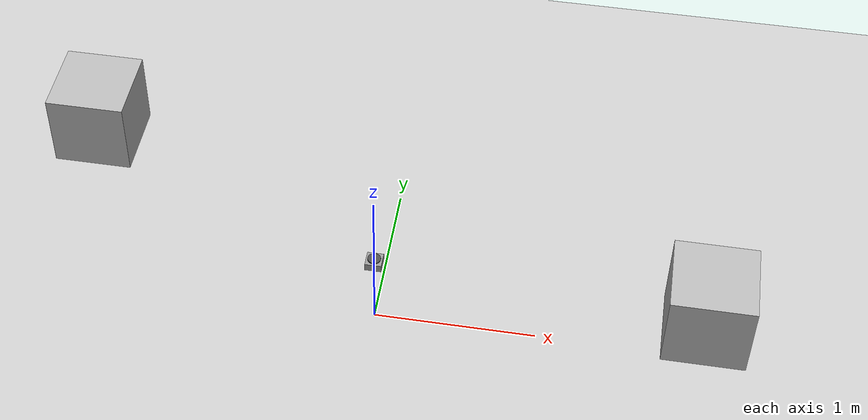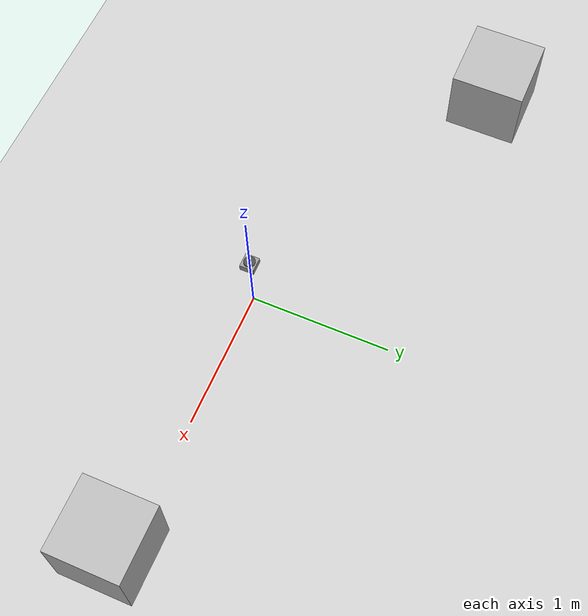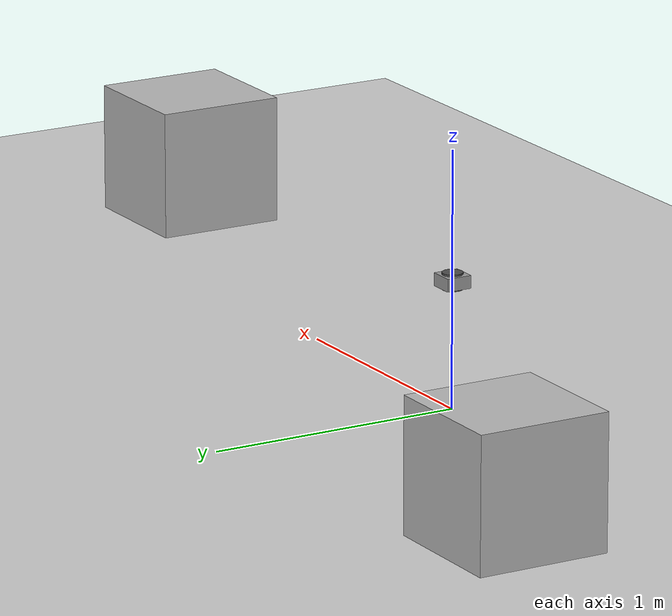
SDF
<?xml version="1.0"?>
<sdf version="1.8">
  <world name="livox_test">
    <scene><grid>true</grid></scene>
    <physics name="1ms" type="ignored"><max_step_size>0.001</max_step_size><real_time_factor>1.0</real_time_factor></physics>
    <plugin filename="libignition-gazebo-physics-system.so" name="ignition::gazebo::systems::Physics"/>
    <plugin filename="libignition-gazebo-sensors-system.so" name="ignition::gazebo::systems::Sensors"><render_engine>ogre2</render_engine></plugin>
    <plugin filename="libignition-gazebo-scene-broadcaster-system.so" name="ignition::gazebo::systems::SceneBroadcaster"/>
    <plugin filename="libignition-gazebo-user-commands-system.so" name="ignition::gazebo::systems::UserCommands"/>
    <include><pose>0 0 0 0 0 0</pose><uri>https://fuel.ignitionrobotics.org/1.0/OpenRobotics/models/Ground Plane</uri></include>
    <include><pose>0 0 0.5 0 0 0</pose><uri>model://livox_mid360</uri></include>
    <model name="box1"><pose>2 0 0.5 0 0 0</pose><static>true</static><link name="link"><visual name="visual"><geometry><box><size>0.5 0.5 0.5</size></box></geometry></visual><collision name="collision"><geometry><box><size>0.5 0.5 0.5</size></box></geometry></collision></link></model>
    <model name="box2"><pose>-2 1 0.5 0 0 0</pose><static>true</static><link name="link"><visual name="visual"><geometry><box><size>0.5 0.5 0.5</size></box></geometry></visual><collision name="collision"><geometry><box><size>0.5 0.5 0.5</size></box></geometry></collision></link></model>
  </world>
</sdf>

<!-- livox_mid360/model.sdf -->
<sdf version="1.8">
  <model name="livox_mid360">
    <link name="livox_frame">
      <visual name="visual">
        <geometry><cylinder><radius>0.04</radius><length>0.065</length></cylinder></geometry>
        <material><ambient>0.2 0.2 0.2 1.0</ambient><diffuse>0.3 0.3 0.3 1.0</diffuse></material>
      </visual>
      <sensor name="livox_lidar" type="gpu_lidar">
        <pose>0 0 0 0 0 0</pose>
        <update_rate>10</update_rate>
        <topic>livox/points</topic>
        <ray>
          <scan>
            <horizontal><samples>360</samples><resolution>1</resolution><min_angle>-3.14159</min_angle><max_angle>3.14159</max_angle></horizontal>
            <vertical><samples>1</samples><resolution>1</resolution><min_angle>0</min_angle><max_angle>0</max_angle></vertical>
          </scan>
          <range><min>0.1</min><max>40.0</max><resolution>0.02</resolution></range>
        </ray>
        <always_on>1</always_on>
        <visualize>true</visualize>
      </sensor>
    </link>
    <link name="base_link">
      <visual name="visual">
        <geometry><box><size>0.1 0.1 0.05</size></box></geometry>
        <material><ambient>0.5 0.5 0.5 1.0</ambient><diffuse>0.6 0.6 0.6 1.0</diffuse></material>
      </visual>
    </link>
    <joint name="mount_joint" type="fixed">
      <parent>base_link</parent>
      <child>livox_frame</child>
      <pose>0 0 0.05 0 0 0</pose>
    </joint>
  </model>
</sdf>
